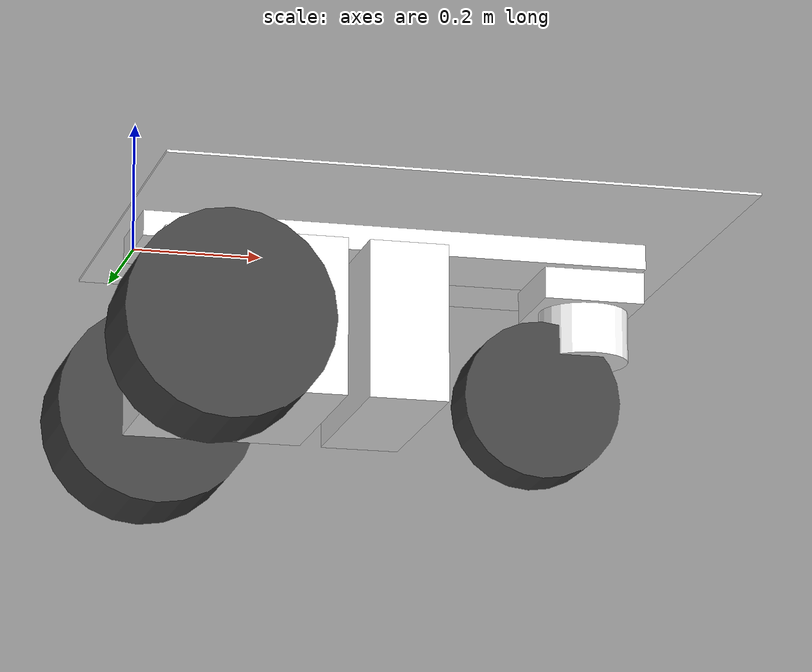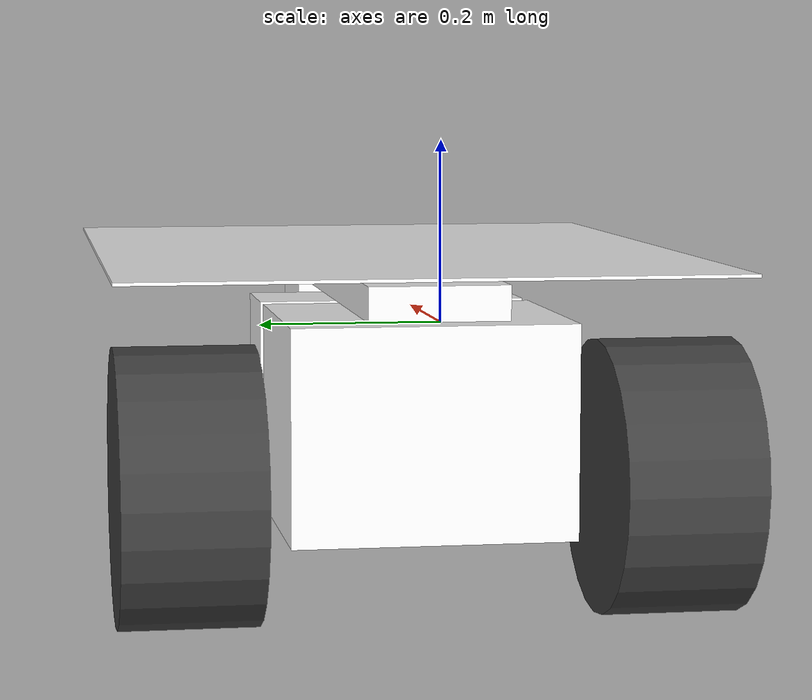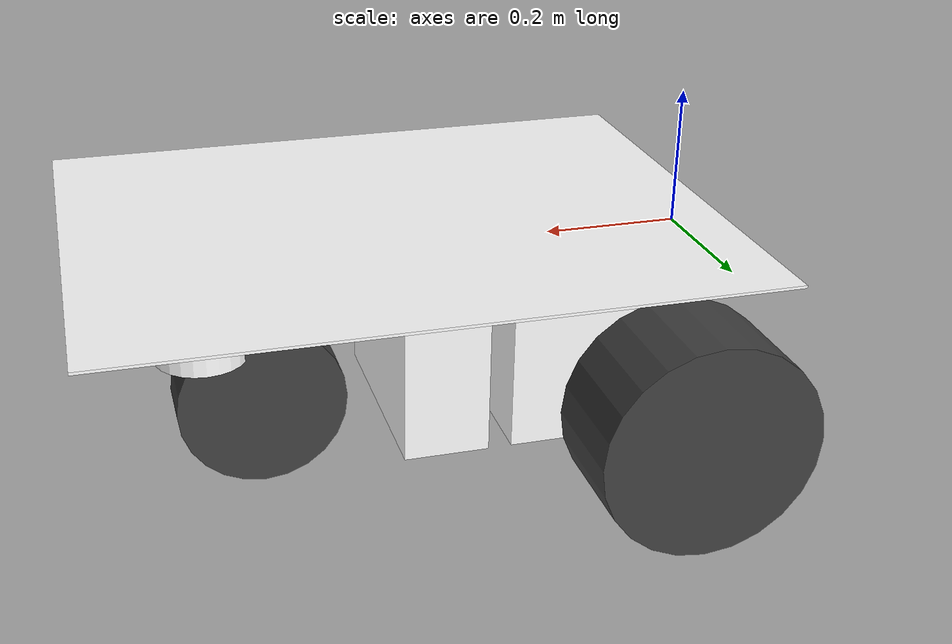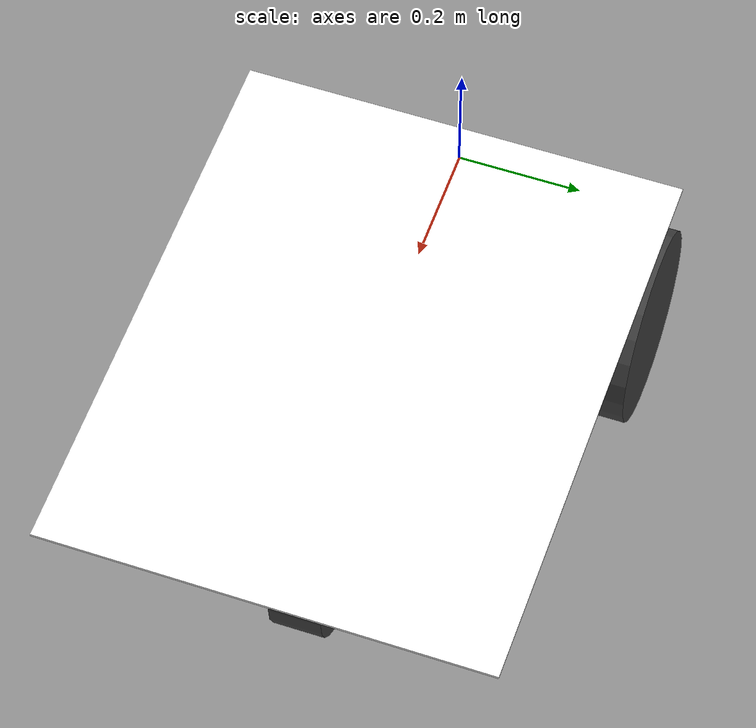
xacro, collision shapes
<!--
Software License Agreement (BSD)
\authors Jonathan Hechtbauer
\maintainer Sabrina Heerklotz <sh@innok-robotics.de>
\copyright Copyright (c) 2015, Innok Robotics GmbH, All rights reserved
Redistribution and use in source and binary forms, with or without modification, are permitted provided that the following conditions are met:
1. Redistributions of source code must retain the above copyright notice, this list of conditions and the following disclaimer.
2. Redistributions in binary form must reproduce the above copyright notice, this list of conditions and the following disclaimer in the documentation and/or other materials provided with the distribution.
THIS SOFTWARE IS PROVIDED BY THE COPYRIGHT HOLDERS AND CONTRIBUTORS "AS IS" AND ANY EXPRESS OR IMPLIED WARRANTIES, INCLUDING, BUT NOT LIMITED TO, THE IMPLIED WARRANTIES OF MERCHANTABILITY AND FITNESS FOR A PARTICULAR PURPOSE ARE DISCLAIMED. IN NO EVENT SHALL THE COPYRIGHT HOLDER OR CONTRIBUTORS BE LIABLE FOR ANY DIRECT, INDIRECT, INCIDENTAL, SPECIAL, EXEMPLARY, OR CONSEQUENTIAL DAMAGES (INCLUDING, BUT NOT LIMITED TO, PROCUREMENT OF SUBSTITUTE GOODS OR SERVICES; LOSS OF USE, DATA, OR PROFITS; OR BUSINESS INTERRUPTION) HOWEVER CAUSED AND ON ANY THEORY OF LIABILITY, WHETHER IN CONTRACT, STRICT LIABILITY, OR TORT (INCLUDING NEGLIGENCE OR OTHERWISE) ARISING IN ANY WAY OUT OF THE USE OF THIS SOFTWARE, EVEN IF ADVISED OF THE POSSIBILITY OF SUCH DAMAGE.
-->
<?xml version="1.0"?>

<robot name="innok_heros_3" xmlns:xacro="http://ros.org/wiki/xacro">

  <xacro:property name="PI" value="3.1415926535897931"/>
  <xacro:property name="wheel_radius" value="0.160" />
  <xacro:property name="wheel_width"  value="0.160" />
  <xacro:property name="wheel_mass"   value="5.4" />
  <xacro:property name="wheel_seperation" value="0.580" />
  <xacro:property name="camera_link"   value="0.05" />

  <xacro:include filename="$(find innok_heros_description)/urdf/modules/heros_base_link.xacro"/>
  <xacro:include filename="$(find innok_heros_description)/urdf/modules/heros_wheel.xacro" />
  <xacro:include filename="$(find innok_heros_description)/urdf/modules/heros_drive.xacro" />
  <xacro:include filename="$(find innok_heros_description)/urdf/modules/heros_caster.xacro" />
  <xacro:include filename="$(find innok_heros_description)/urdf/modules/heros_battery.xacro" />
  <xacro:include filename="$(find innok_heros_description)/urdf/modules/heros_mounting_plate.xacro" />

  <xacro:include filename="$(find innok_heros_description)/urdf/ROS/heros_joint_pub.xacro" />
  <xacro:include filename="$(find innok_heros_description)/urdf/ROS/heros_diff_drive.xacro" />

  <!-- heros modules-->
  <heros_base_link   							/>
  <heros_drive   	  front_rear='rear'     dx='0.018' flip_z='1'/>
  <heros_caster  	 	         	dx='0.637'		/>
  <heros_battery 	  name='battery_box'    dx='0.336'		/>
  <heros_mounting_plate   wheels='3'		dx='-0.02'		/>

  <!-- heros ROS plugins-->
  <heros_joint_pub joints='joint_base_wheel_rear_left, joint_base_wheel_rear_right, caster_bot_joint, caster_wheel_joint'					/>
  <heros_diff_drive 							/>

</robot>

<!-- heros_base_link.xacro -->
<robot xmlns:xacro="http://ros.org/wiki/xacro" name="heros_base_link">
<xacro:macro name="heros_base_link">

  <link name="base_link"/>

  <link name="beam_link">
    <inertial>
      <origin xyz="0.40 0 0.02" rpy="0 0 0" /> <mass value="2" />
      <inertia ixx="0.003" ixy="0" ixz="0" iyy="0.09" iyz="0" izz="0.09" />
    </inertial>
    <visual>
      <origin xyz="0 0 0" rpy="0 0 0" />
      <geometry> <mesh filename="package://innok_heros_description/meshes/beam.STL" /> </geometry>
      <material name="white">
        <color rgba="1 1 1 1"/>
      </material>
    </visual>
    <collision>
      <origin xyz="0.4 0 0.02" rpy="0 0 0" />
      <geometry> <box size="0.8 0.160 0.040"/> </geometry>
    </collision>
  </link>

  <joint name="beam_joint" type="fixed">
    <origin
      xyz="0 0 0" rpy="0 0 0" />
    <parent link="base_link" />
    <child link="beam_link" />
    <axis xyz="0 0 0" />
  </joint>

</xacro:macro>
</robot>

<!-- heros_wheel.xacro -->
<robot xmlns:xacro="http://ros.org/wiki/xacro" name="heros_wheel">
<xacro:macro name="heros_wheel" params="front_rear left_right flip_y flip_z">

  <link name="wheel_${front_rear}_${left_right}">
    <collision>
      <origin xyz="0 0.115 0" rpy="${-PI/2} 0 0"/>
      <geometry>
        <cylinder radius="${wheel_radius}" length="${wheel_width}" />
      </geometry>
    </collision>
    <visual>
      <origin xyz="0 0 0" rpy="0 0 0"/>
      <geometry>
        <mesh filename="package://innok_heros_description/meshes/wheel.STL" />
      </geometry>
      <material name="">
        <color rgba="0.25 0.25 0.25 1" />
      </material>
    </visual>
    <inertial>
      <origin xyz="0 0.115 0" rpy="0 0 0"/>
      <mass value="${wheel_mass}"/>
      <inertia ixx="0.046" ixy="0" ixz="0" iyy="0.072" iyz="0" izz="0.045" />
    </inertial>
  </link>

  <gazebo reference="wheel_${front_rear}_${left_right}">
    <gravity>true</gravity>
    <mu1>10</mu1>
    <mu2>10</mu2>
    <kd>1</kd>
    <kp>10000000000.0</kp>
    <fdir1>0 0 1</fdir1>
    <selfCollide>false</selfCollide>
    <material>Gazebo/Grey</material>
  </gazebo>

  <joint name="joint_base_wheel_${front_rear}_${left_right}" type="continuous">
    <parent link="drive_box_${front_rear}"/>
    <child link="wheel_${front_rear}_${left_right}"/>
    <origin xyz="0.063 ${flip_y*flip_z * 0.162} -0.184" rpy="0 0 ${PI/2 - PI/2*flip_y*flip_z }"/>
    <axis xyz="0 ${flip_y * 1} 0" />
  </joint>

  <transmission name="trans_wheel_${front_rear}_${left_right}">
    <type>transmission_interface/SimpleTransmission</type>
    <joint name="joint_base_wheel_${front_rear}_${left_right}">
      <hardwareInterface>EffortJointInterface</hardwareInterface>
    </joint>
    <actuator name="motor_wheel_${front_rear}_${left_right}">
      <mechanicalReduction>100</mechanicalReduction>
    </actuator>
  </transmission>

</xacro:macro>
</robot>

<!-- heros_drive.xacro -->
<robot xmlns:xacro="http://ros.org/wiki/xacro" name="heros_drive">
<xacro:macro name="heros_drive" params="front_rear dx flip_z">

  <heros_wheel front_rear="${front_rear}" left_right="left"  flip_y="1"  flip_z="${flip_z}"/>
  <heros_wheel front_rear="${front_rear}" left_right="right" flip_y="-1" flip_z="${flip_z}"/>

  <link name="drive_box_${front_rear}">
    <inertial>
      <origin xyz="0.122 -0.0026 -0.136" rpy="0 0 0" />
       <mass value="10.6" />
      <inertia ixx="0.316" ixy="0" ixz="0" iyy="0.166" iyz="0" izz="0.307" />
    </inertial>
    <visual>
      <origin xyz="0 0 0" rpy="0 0 0" />
      <geometry>
        <mesh filename="package://innok_heros_description/meshes/drive_box.STL" />
      </geometry>
      <material name="white">
        <color rgba="1 1 1 1"/>
      </material>
    </visual>
    <collision>
      <origin xyz="0.142 0 -0.124" rpy="0 0 0" />
      <geometry>
        <box size="0.284 0.328 0.248"/>
      </geometry>
    </collision>
  </link>

  <joint name="drive_box_joint_${front_rear}" type="fixed">
    <origin xyz="${dx} 0 -0.0065" rpy="0 0 ${PI/2 - PI/2*flip_z }" />
    <parent link="beam_link" />
    <child link="drive_box_${front_rear}" />
    <axis xyz="0 0 0" />
  </joint>

</xacro:macro>
</robot>

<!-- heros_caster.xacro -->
<robot xmlns:xacro="http://ros.org/wiki/xacro" name="heros_caster">
<xacro:macro name="heros_caster" params="dx">

  <link name="caster_top">
    <inertial>
      <origin xyz="0.083 0 -0.024" rpy="0 0 0" />
      <mass value="2.56" />
      <inertia ixx="0.007" ixy="0" ixz="0" iyy="0.008" iyz="0" izz="0.014" />
    </inertial>
    <visual>
      <origin xyz="0 0 0" rpy="0 0 0" />
      <geometry>
        <mesh filename="package://innok_heros_description/meshes/caster_top.STL" />
      </geometry>
      <material name="white">
        <color rgba="1 1 1 1"/>
      </material>
    </visual>
    <collision>
      <origin xyz="0.08 0 -0.025" rpy="0 0 0" />
      <geometry>
        <box size= "0.160 0.160 0.05" />
      </geometry>
    </collision>
  </link>

  <joint name="caster_top_joint" type="fixed">
    <origin xyz="${dx} 0 -0.006" rpy="0 0 0" />
    <parent link="beam_link" />
    <child link="caster_top" />
    <axis xyz="0 0 0" />
  </joint>

  <link name="caster_bot">
    <inertial>
      <origin xyz="-0.023 0 -0.062" rpy="0 0 0" />
      <mass value="2.9" />
      <inertia ixx="0.016" ixy="0" ixz="0.005" iyy="0.016" iyz="0" izz="0.01" />
    </inertial>
    <visual>
      <origin xyz="0 0 0" rpy="0 0 0" />
      <geometry>
        <mesh filename="package://innok_heros_description/meshes/caster_bot.STL" />
      </geometry>
      <material name="white">
        <color rgba="1 1 1 1"/>
      </material>
    </visual>
    <collision>
      <origin xyz="0 0 -0.05" rpy="0 0 0" />
      <geometry>
        <cylinder radius="0.07" length="0.09" />
      </geometry>
    </collision>
  </link>

  <joint name="caster_bot_joint" type="continuous">
    <origin xyz="0.083 0 -0.035" rpy="0 0 0" />
    <parent link="caster_top" />
    <child link="caster_bot" />
    <axis xyz="0 0 1" />
  </joint>

  <link name="caster_wheel">
    <inertial>
      <origin xyz="0 0 0" rpy="0 0 0" />
      <mass value="5" />
      <inertia  ixx="0.017" ixy="0" ixz="0" iyy="0.030" iyz="0" izz="0.017" />
    </inertial>
    <visual>
      <origin xyz="0 0 0" rpy="0 0 0" />
      <geometry>
        <mesh filename="package://innok_heros_description/meshes/caster_wheel.STL" />
      </geometry>
      <material name="">
        <color rgba="0.25 0.25 0.25 1" />
      </material>
    </visual>
    <collision>

      <origin xyz="0 0.01 0 " rpy="-1.57 0 0" />
      <geometry>
        <cylinder radius="0.125" length="0.085" />
      </geometry>
    </collision>
  </link>

 <gazebo reference="caster_wheel">
    <material>Gazebo/Grey</material>
  </gazebo>

  <joint name="caster_wheel_joint" type="continuous">
    <origin xyz="-0.08 -0.014 -0.17" rpy="0 0 0.003" />
    <parent link="caster_bot" />
    <child link="caster_wheel" />
    <axis xyz="0 1 0" />
  </joint>

</xacro:macro>
</robot>

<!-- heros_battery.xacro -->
<robot xmlns:xacro="http://ros.org/wiki/xacro" name="heros_battery">
<xacro:macro name="heros_battery" params="name dx">>

  <link name="${name}">
    <inertial>
      <origin xyz="0.064 0 -0.1" rpy="0 0 0" />
      <mass value="4.71" />
      <inertia ixx="0.114" ixy="0" ixz="0" iyy="0.05" iyz="0" izz="0.078" />
    </inertial>
    <visual>
      <origin xyz="0 0 0" rpy="0 0 0" />
      <geometry>
        <mesh filename="package://innok_heros_description/meshes/battery_box.STL" />
      </geometry>
      <material name="white">
        <color rgba="1 1 1 1"/>
      </material>
    </visual>
    <collision>
      <origin xyz="0.062 0 -0.124" rpy="0 0 0" />
      <geometry>
        <box size="0.124 0.328 0.248"/>
      </geometry>
    </collision>
  </link>

  <joint name="battery_box_joint" type="fixed">
    <origin
      xyz="${dx} 0 -0.007" rpy="0 0 0" />
    <parent link="beam_link" />
    <child link="${name}" />
    <axis xyz="0 0 0" />
  </joint>

</xacro:macro>
</robot>

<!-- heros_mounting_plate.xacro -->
<robot xmlns:xacro="http://ros.org/wiki/xacro" name="heros_plate">
<xacro:macro name="heros_mounting_plate" params="wheels dx">

  <link name="mounting_plate">
    <inertial>
      <origin
        xyz="0.319 0 -0.002" rpy="0 0 0" />
      <mass value="4.35" />
      <inertia ixx="0.133" ixy="0" ixz="0" iyy="0.278" iyz="0" izz="0.410" />
    </inertial>
    <visual>
      <origin xyz="0 0 0" rpy="0 0 0" />
      <geometry>
        <mesh filename="package://innok_heros_description/meshes/mounting_plate_${wheels}w.STL" />
      </geometry>
      <material name="white">
        <color rgba="1 1 1 1"/>
      </material>
    </visual>
    <collision>
      <origin xyz="0.46 0 -0.002" rpy="0 0 0" />
      <geometry>
        <box size="0.92 0.72 0.004"/>
      </geometry>
    </collision>
  </link>

  <joint name="mounting_plate_joint" type="fixed">
    <origin xyz=" ${dx} 0 0.05" rpy="0 0 0" />
    <parent link="beam_link" />
    <child link="mounting_plate" />
    <axis xyz="0 0 0" />
  </joint>

</xacro:macro>
</robot>
